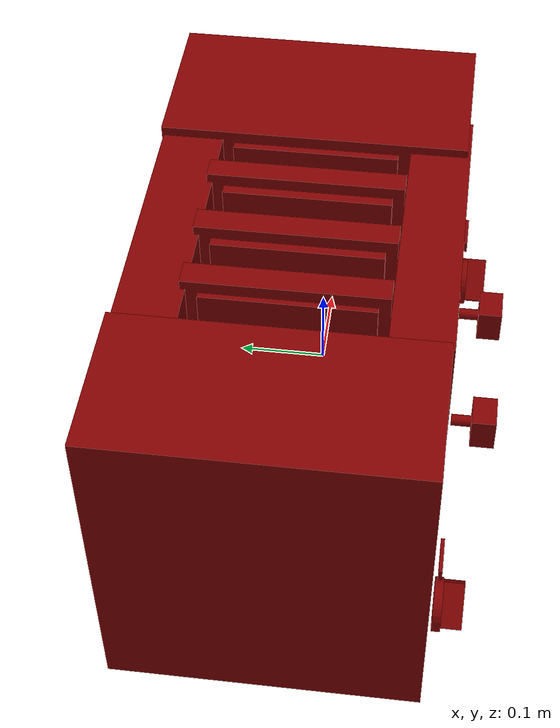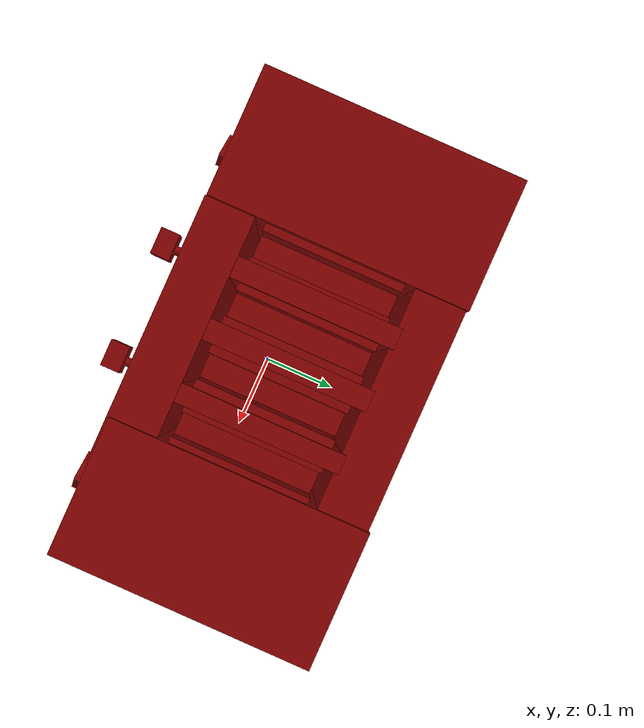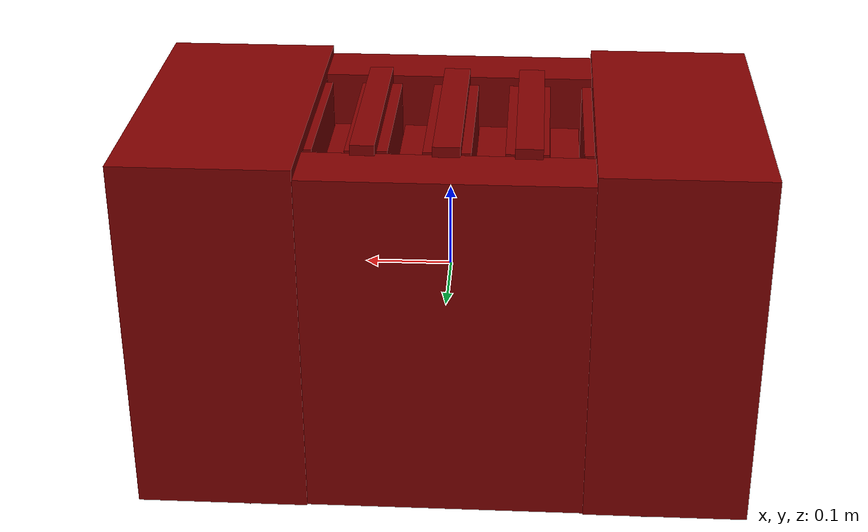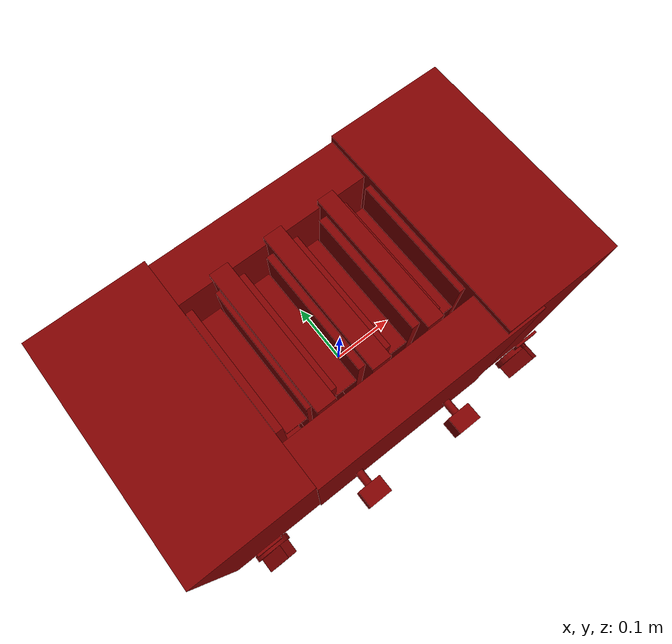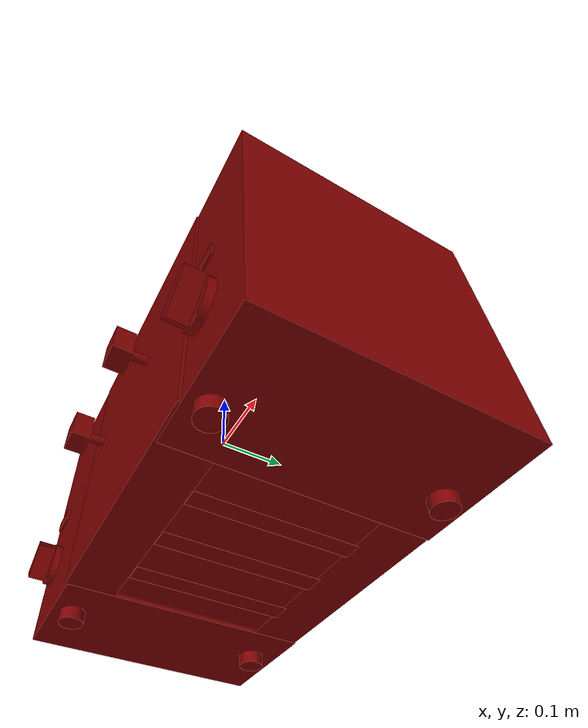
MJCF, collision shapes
<?xml version='1.0' encoding='UTF-8'?>
<mujoco model="model">
  <option timestep="0.002" gravity="0.0 0.0 -9.81"/>
  <compiler angle="radian"/>
  <asset>
    <mesh file="visuals/sideL_button_cancel.obj" name="sideL_button_cancel_vis"/>
    <mesh file="visuals/sideL_knob_doneness.obj" name="sideL_knob_doneness_vis"/>
    <mesh file="visuals/sideL_lever.obj" name="sideL_lever_vis"/>
    <mesh file="visuals/sideR_button_cancel.obj" name="sideR_button_cancel_vis"/>
    <mesh file="visuals/sideR_knob_doneness.obj" name="sideR_knob_doneness_vis"/>
    <mesh file="visuals/sideR_lever.obj" name="sideR_lever_vis"/>
    <mesh file="visuals/Body001.obj" name="Body001_vis"/>
    <mesh file="visuals/Body002.obj" name="Body002_vis"/>
    <texture file="visuals/T_BC001.png" name="Body001_material" type="2d"/>
    <material name="Body001_material" rgba="1 1 1 1.0" texture="Body001_material" shininess="0.141421377658844" specular="0.3103448502657381"/>
    <texture file="visuals/T_BC001.png" name="sideL_button_cancel_material" type="2d"/>
    <material name="sideL_button_cancel_material" rgba="1 1 1 1.0" texture="sideL_button_cancel_material" shininess="0.141421377658844" specular="0.3103448502657381"/>
    <texture file="visuals/T_BC001.png" name="sideL_knob_doneness_material" type="2d"/>
    <material name="sideL_knob_doneness_material" rgba="1 1 1 1.0" texture="sideL_knob_doneness_material" shininess="0.141421377658844" specular="0.3103448502657381"/>
    <texture file="visuals/T_BC001.png" name="sideL_lever_material" type="2d"/>
    <material name="sideL_lever_material" rgba="1 1 1 1.0" texture="sideL_lever_material" shininess="0.141421377658844" specular="0.3103448502657381"/>
    <texture file="visuals/T_BC001.png" name="sideR_button_cancel_material" type="2d"/>
    <material name="sideR_button_cancel_material" rgba="1 1 1 1.0" texture="sideR_button_cancel_material" shininess="0.141421377658844" specular="0.3103448502657381"/>
    <texture file="visuals/T_BC001.png" name="sideR_knob_doneness_material" type="2d"/>
    <material name="sideR_knob_doneness_material" rgba="1 1 1 1.0" texture="sideR_knob_doneness_material" shininess="0.141421377658844" specular="0.3103448502657381"/>
    <texture file="visuals/T_BC001.png" name="sideR_lever_material" type="2d"/>
    <material name="sideR_lever_material" rgba="1 1 1 1.0" texture="sideR_lever_material" shininess="0.141421377658844" specular="0.3103448502657381"/>
    <texture file="visuals/T_BC001.png" name="Body002_material" type="2d"/>
    <material name="Body002_material" rgba="1 1 1 1.0" texture="Body002_material" shininess="0.141421377658844" specular="0.3103448502657381"/>
  </asset>
  <default>
    <default class="visual">
      <geom conaffinity="0" contype="0" group="1" type="mesh"/>
    </default>
    <default class="collision">
      <geom group="0" rgba="0.5 0 0 0.5" density="1.0" solref="0.004 1" solimp="0.998 0.998 0.001"/>
    </default>
    <default class="spawn">
      <geom group="0" rgba="1 1 1 0.5" contype="0" conaffinity="0"/>
      <site group="0" rgba="1 1 1 0.5"/>
    </default>
    <default class="region">
      <geom group="1" conaffinity="0" contype="0" rgba="0 1 0 0" mass="0"/>
    </default>
  </default>
  <worldbody>
    <body>
      <body name="object">
        <geom mesh="Body001_vis" type="mesh" solimp="0.998 0.998 0.001" solref="0.001 1" friction="0.95 0.3 0.1" class="visual" material="Body001_material"/>
        <geom type="box" pos="-0.00311136 0.03029262 0.00501753" size="0.014889830723404884 0.11575727164745331 0.20856213569641113" quat="1.0 0.0 0.0 0.0" class="collision"/>
        <geom type="box" pos="0.08625342 0.03029262 0.00501753" size="0.013349585235118866 0.11575723439455032 0.2085607796907425" quat="1.0 0.0 0.0 0.0" class="collision"/>
        <geom type="box" pos="-0.09069987 0.03029262 0.00501753" size="0.014889655634760857 0.11575718969106674 0.20855943858623505" quat="1.0 0.0 0.0 0.0" class="collision"/>
        <geom type="box" pos="-0.25285179 0.02977030 0.00501753" size="0.09201085567474365 0.1847328543663025 0.2085580825805664" quat="1.0 0.0 0.0 0.0" class="collision"/>
        <geom type="box" pos="0.24842461 0.03022499 0.00501753" size="0.09672180563211441 0.18427810072898865 0.20855674147605896" quat="1.0 0.0 0.0 0.0" class="collision"/>
        <geom type="box" pos="0.02689059 -0.12205667 -0.00042886" size="0.187917098402977 0.03561282157897949 0.203109011054039" quat="1.0 0.0 0.0 0.0" class="collision"/>
        <geom type="box" pos="0.02694697 0.17622766 -0.00078182" size="0.18786001205444336 0.03615773469209671 0.20275470614433289" quat="1.0 0.0 0.0 0.0" class="collision"/>
        <geom type="box" pos="0.03145607 0.02705383 -0.19898682" size="0.18334950506687164 0.11420999467372894 0.004544232971966267" quat="1.0 0.0 0.0 0.0" class="collision"/>
        <geom type="box" pos="-0.10675095 0.02736013 0.09401608" size="0.005456375423818827 0.09906397759914398 0.10445065051317215" quat="1.0 0.0 0.0 0.0" class="collision"/>
        <geom type="box" pos="-0.15459882 0.02736013 0.09401608" size="0.005456375423818827 0.099063940346241 0.10445061326026917" quat="1.0 0.0 0.0 0.0" class="collision"/>
        <geom type="box" pos="-0.07181918 0.02736013 0.09401608" size="0.006852762307971716 0.09906349331140518 0.10445080697536469" quat="1.0 0.0 0.0 0.0" class="collision"/>
        <geom type="box" pos="-0.02176978 0.02736013 0.09401608" size="0.006852760445326567 0.09906349331140518 0.10445073992013931" quat="1.0 0.0 0.0 0.0" class="collision"/>
        <geom type="box" pos="0.01668120 0.02736013 0.09401608" size="0.0068527585826814175 0.09906349331140518 0.10445067286491394" quat="1.0 0.0 0.0 0.0" class="collision"/>
        <geom type="box" pos="0.06802115 0.02736013 0.09401608" size="0.006852756254374981 0.09906349331140518 0.10445060580968857" quat="1.0 0.0 0.0 0.0" class="collision"/>
        <geom type="box" pos="0.10093545 0.02736013 0.09401608" size="0.006852754391729832 0.09906349331140518 0.1044505387544632" quat="1.0 0.0 0.0 0.0" class="collision"/>
        <geom type="box" pos="0.14985620 0.02736013 0.09401608" size="0.006852752063423395 0.09906349331140518 0.10445047169923782" quat="1.0 0.0 0.0 0.0" class="collision"/>
        <geom type="cylinder" pos="0.22213344 -0.12507828 -0.21236209" size="0.018061628565192223 0.009052393957972527" quat="1.0 0.0 0.0 0.0" class="collision"/>
        <geom type="cylinder" pos="-0.23178133 -0.12507828 -0.21236209" size="0.018061628565192223 0.009052393957972527" quat="1.0 0.0 0.0 0.0" class="collision"/>
        <geom type="cylinder" pos="0.22213344 0.17294766 -0.21236209" size="0.018061628565192223 0.009052393957972527" quat="1.0 0.0 0.0 0.0" class="collision"/>
        <geom type="cylinder" pos="-0.23178133 0.17294766 -0.21236209" size="0.018061628565192223 0.009052393957972527" quat="1.0 0.0 0.0 0.0" class="collision"/>
        <body name="sideL_button_cancel">
          <joint axis="0.0 1.0 0.0" pos="-0.26410026 -0.15811472 -0.03015144" limited="true" name="sideL_button_cancel_joint" range="0.0 0.0075" type="slide" damping="1" frictionloss="1" armature=".01" stiffness="0.2" springref="-0.1"/>
          <geom mesh="sideL_button_cancel_vis" type="mesh" solimp="0.998 0.998 0.001" solref="0.001 1" friction="0.95 0.3 0.1" class="visual" material="sideL_button_cancel_material"/>
          <geom class="collision" type="box" pos="-0.26274700 -0.16370949 -0.03004264" size="0.022017255425453186 0.0021441811695694923 0.008669786155223846" quat="1.0 0.0 0.0 0.0" name="sideL_button_cancel_main"/>
        </body>
        <body name="sideL_knob_doneness">
          <joint axis="0.0 1.0 0.0" pos="-0.26555405 -0.17773810 -0.11421408" limited="true" name="sideL_knob_doneness_joint" range="0.0 4.625122517784973" type="hinge" damping="0.05" armature="0.001"/>
          <geom mesh="sideL_knob_doneness_vis" type="mesh" solimp="0.998 0.998 0.001" solref="0.001 1" friction="0.95 0.3 0.1" class="visual" material="sideL_knob_doneness_material"/>
          <geom class="collision" type="box" pos="-0.26554779 -0.17829334 -0.11350775" size="0.010949773713946342 0.016079390421509743 0.026809614151716232" quat="0.9189994931221008 0.0 0.3942587375640869 0.0" name="sideL_knob_doneness_main"/>
          <geom type="cylinder" pos="-0.26645110 -0.16477439 -0.11456795" size="0.03140706568956375 0.005081482231616974" quat="0.7071067094802856 0.7071068286895752 0.0 0.0" class="collision"/>
        </body>
        <body name="sideL_lever">
          <joint axis="0.0 0.0 -1.0" pos="-0.09055852 -0.19679202 0.00746036" limited="true" name="sideL_lever_joint" range="0.0 0.06" type="slide" damping="1" frictionloss="1" armature=".01" stiffness="2" springref="-0.5"/>
          <geom class="region" name="reg_sideL_slotR" type="box" pos="-0.04666602 0.027472965000000002 0.21842737" size="0.01836169 0.100630545 0.10600023"/>
          <geom class="region" name="reg_sideL_slotL" type="box" pos="-0.1306284 0.027472965000000002 0.21842713" size="0.01837706 0.100630545 0.10599998999999999"/>
          <geom mesh="sideL_lever_vis" type="mesh" solimp="0.998 0.998 0.001" solref="0.001 1" friction="0.95 0.3 0.1" class="visual" material="sideL_lever_material"/>
          <geom type="cylinder" pos="-0.08918158 -0.17378079 0.00625992" size="0.00671454519033432 0.011980821378529072" quat="0.7071067094802856 0.7071068286895752 0.0 0.0" class="collision"/>
          <geom class="collision" type="box" pos="-0.09058586 -0.19973794 0.00768548" size="0.020134715363383293 0.014288356527686119 0.021342195570468903" quat="1.0 0.0 0.0 0.0" name="sideL_lever_handle"/>
          <geom class="collision" type="box" pos="-0.13056605 0.02736013 0.14509968" size="0.016610736027359962 0.09906349331140518 0.0011100878473371267" quat="1.0 0.0 0.0 0.0" name="sideL_slotL_floor"/>
          <geom class="collision" type="box" pos="-0.04686966 0.02736013 0.14509968" size="0.016785556450486183 0.09906391054391861 0.001110079581849277" quat="1.0 0.0 0.0 0.0" name="sideL_slotR_floor"/>
        </body>
        <body name="sideR_button_cancel">
          <joint axis="0.0 1.0 0.0" pos="0.26924878 -0.15811472 -0.03015144" limited="true" name="sideR_button_cancel_joint" range="0.0 0.0075" type="slide" damping="1" frictionloss="1" armature=".01" stiffness="0.2" springref="-0.1"/>
          <geom mesh="sideR_button_cancel_vis" type="mesh" solimp="0.998 0.998 0.001" solref="0.001 1" friction="0.95 0.3 0.1" class="visual" material="sideR_button_cancel_material"/>
          <geom class="collision" type="box" pos="0.26923769 -0.16370949 -0.03004264" size="0.022017261013388634 0.002144180703908205 0.008669787086546421" quat="1.0 0.0 0.0 0.0" name="sideR_button_cancel_main"/>
        </body>
        <body name="sideR_knob_doneness">
          <joint axis="0.0 1.0 0.0" pos="0.26920929 -0.17773810 -0.11537564" limited="true" name="sideR_knob_doneness_joint" range="0.0 4.625122517784973" type="hinge" damping="0.05" armature="0.001"/>
          <geom mesh="sideR_knob_doneness_vis" type="mesh" solimp="0.998 0.998 0.001" solref="0.001 1" friction="0.95 0.3 0.1" class="visual" material="sideR_knob_doneness_material"/>
          <geom class="collision" type="box" pos="0.27025004 -0.17859397 -0.11346306" size="0.011468051932752132 0.01638001762330532 0.02847914583981037" quat="0.9130614995956421 0.0 0.407821923494339 0.0" name="sideR_knob_doneness_main"/>
          <geom type="cylinder" pos="0.26911097 -0.16477439 -0.11525305" size="0.03140706568956375 0.005081482231616974" quat="0.7071067094802856 0.7071068286895752 0.0 0.0" class="collision"/>
        </body>
        <body name="sideR_lever">
          <joint axis="0.0 0.0 -1.0" pos="0.08501331 -0.19679202 0.00746036" limited="true" name="sideR_lever_joint" range="0.0 0.06" type="slide" damping="1" frictionloss="1" armature=".01" stiffness="2" springref="-0.5"/>
          <geom class="region" name="reg_sideR_slotR" type="box" pos="0.125339595 0.027472965000000002 0.21842737" size="0.018085815000000005 0.100630545 0.10600023"/>
          <geom class="region" name="reg_sideR_slotL" type="box" pos="0.041682670000000005 0.027472965000000002 0.21842737" size="0.018514310000000003 0.100630545 0.10600023"/>
          <geom mesh="sideR_lever_vis" type="mesh" solimp="0.998 0.998 0.001" solref="0.001 1" friction="0.95 0.3 0.1" class="visual" material="sideR_lever_material"/>
          <geom class="collision" type="box" pos="0.08453678 -0.19973794 0.00768548" size="0.02013455517590046 0.014288346283137798 0.021342042833566666" quat="1.0 0.0 0.0 0.0" name="sideR_lever_handle"/>
          <geom type="cylinder" pos="0.08594107 -0.17378079 0.00625992" size="0.00671454519033432 0.011980821378529072" quat="0.7071067094802856 0.7071068286895752 0.0 0.0" class="collision"/>
          <geom class="collision" type="box" pos="0.04153157 0.02736013 0.14509968" size="0.0167316235601902 0.09906449168920517 0.0011100867995992303" quat="1.0 0.0 0.0 0.0" name="sideR_slotL_floor"/>
          <geom class="collision" type="box" pos="0.12517587 0.02736013 0.14509968" size="0.016578909009695053 0.09906499087810516 0.0011100867995992303" quat="1.0 0.0 0.0 0.0" name="sideR_slotR_floor"/>
        </body>
        <body name="Body002">
          <geom mesh="Body002_vis" type="mesh" solimp="0.998 0.998 0.001" solref="0.001 1" friction="0.95 0.3 0.1" class="visual" material="Body002_material"/>
        </body>
        <geom class="region" name="reg_main" type="box" pos="0.00014190499999999773 0.02543774 -7.500000000215667e-08" size="0.346004085 0.19006367000000002 0.223660335"/>
      </body>
    </body>
  </worldbody>
  <actuator>
    <motor name="sideL_button_cancel_joint_actuator" joint="sideL_button_cancel_joint" gear="0.5"/>
    <motor name="sideL_knob_doneness_joint_actuator" joint="sideL_knob_doneness_joint" gear="0.5"/>
    <motor name="sideL_lever_joint_actuator" joint="sideL_lever_joint" gear="0.5"/>
    <motor name="sideR_button_cancel_joint_actuator" joint="sideR_button_cancel_joint" gear="0.5"/>
    <motor name="sideR_knob_doneness_joint_actuator" joint="sideR_knob_doneness_joint" gear="0.5"/>
    <motor name="sideR_lever_joint_actuator" joint="sideR_lever_joint" gear="0.5"/>
  </actuator>
</mujoco>
